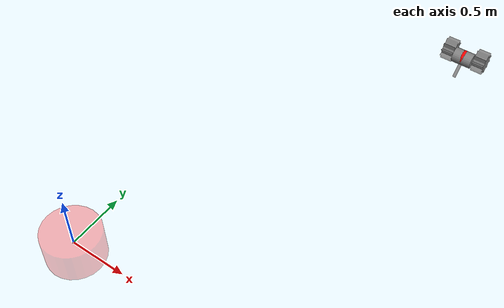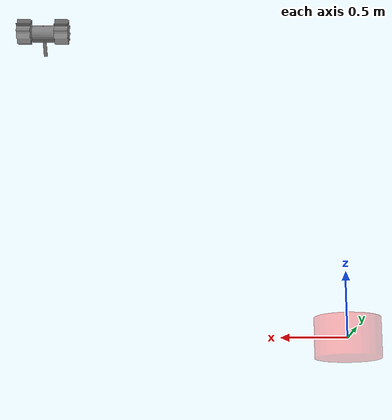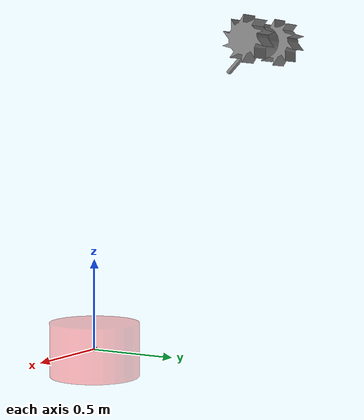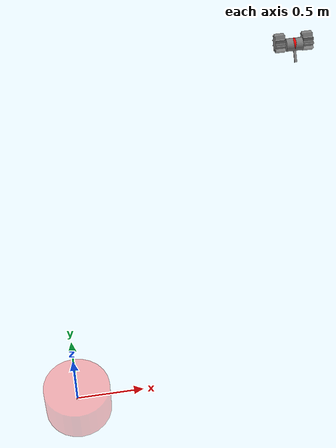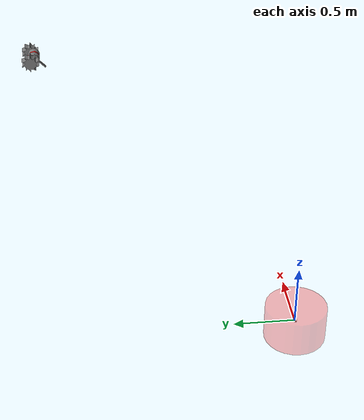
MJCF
<mujoco>

  <visual>
    <!-- 生成される動画の画質を良くする． -->
    <global offwidth="1024" offheight="1024"/>
    <!-- メッシュの分割数調整．影をどれくらいつけるのか -->
    <quality numslices="36" shadowsize="0" />

  </visual>

  <asset>
    <!-- 地面 -->
    <texture name="gray_field" type="2d" builtin="flat" rgb1=".5 .5 .5" width="100" height="100"/>
    <material name="field_material" texture="gray_field" reflectance=".2"/>
    <!--標高データ size="横（フィールドの半分の大きさ）　縦　倍率　マージンの高さ"-->

    <texture name="world_texture" type="skybox" builtin="gradient" rgb1="0 0.5 0.9" rgb2="1 1 1" width="100"/>

    <!-- ロボット -->

    <!-- check -->
    <mesh name="wheel" scale=".001 .001 .001" inertia="exact"  refquat="1 0 0 0"  file="mesh\one_way_grouser.stl" />

  </asset>

  <worldbody>
    <!-- Wrold全体を照らすライトと床 -->
    <light name="main_light" pos="0 0 3" directional="true" diffuse="1.5 1.5 1.5" specular="0.1 0.1 0.1"/>

    <!-- filed -->

    <!-- 目標位置の目印 -->

    <!-- target -->
    <body name="target_body" pos="0 0 0" gravcomp="1">
      <!-- XY平面スライド用に2つの slide joint を追加 -->
      <joint name="slide_x" type="slide" axis="1 0 0"/>
      <joint name="slide_y" type="slide" axis="0 1 0"/>
      <joint name="slide_z" type="slide" axis="0 0 1"/>
      <!-- 衝突無視 -->
      <geom name="target_box" type="box" size="0.01 0.01 0.01" contype="0" conaffinity="0"/>
      <!-- 表示用 site -->
      <site name="target" type="cylinder" pos="0 0 0" size="0.25 0.15" rgba="1 0 0 0.3"/>
    </body>

      <!-- XY平面スライド用に2つの slide joint を追加 -->
      <!-- 衝突無視 -->
      <!-- 表示用 site -->

    <camera name="main_cam" pos="2 -0.7 2.2" euler="42 0 0"/>

    <body name="2wheel_rover" pos="2 2 1.5">
      <joint name="body_free_joint" type="free" damping="1" />

      <!-- body -->
      <body name = "main_body">
        <geom name="main_body_geom" group="2" type="cylinder" fromto=".065 0 0 -.065 0 0" size=".05" mass="0.5" />
      </body>

      <site name="marker" pos="0 -0.0005 0.001" size="0.05" type="sphere" rgba="1 0 0 1"/>
      <site name="IMU" pos="0 0 0" size="0.01" rgba="1 0 1 1"/>
      <site name="GYRO" pos="0 0 0" size="0.01" rgba="0 1 1 1"/>
      <site name="VELOCITY" pos="0 0 0" size="0.01" rgba="0 1 1 1"/>

     <!-- wheel -->
      <body name="r_wheel" pos="0.07 0 0">
        <joint name="r_wheel_joint" type="hinge" axis="-1 0 0" damping="0.3" frictionloss="0.01" />
        <!-- frictionは滑り，ねじり，転がり　の順 -->
        <geom name="r_wheel_geom" group="2" type="mesh" mesh="wheel" mass="0.25" pos="0 0.03 0" friction="1 0.1 0.1" />
      </body>
      <body name="l_wheel" pos="-0.15 0 0">
        <joint name="l_wheel_joint" type="hinge" axis="-1 0 0" damping="0.3" frictionloss="0.01"/>
        <geom name="l_wheel_geom" group="2" type="mesh" mesh="wheel" mass="0.25"  pos="0 0.03 0" friction="1 0.1 0.1"/>
      </body>

      <!-- stabilzer -->
      <geom name="stabilizer" group="2" type="box" size="0.01 0.07 0.005" pos="0 -0.049497 -0.049497" euler="45 0 0" mass="0.2" />

    </body>

    <!-- 貫通しない用の平面 -->
    <geom name="floor" group="1" type="plane" pos="5 5 0" size="5 5 .001" material="field_material"  rgba="0 0 0 0" />

  </worldbody>

  <actuator>
    <!-- swingがトルクをかける対象，gearはモータが関節に与えるスケーリング係数トルク = モーター出力 * gear） -->
    <!-- 入力に対して何倍してトルクを出すかということ -->
    <intvelocity name="r_motor" joint="r_wheel_joint" gear="1" kp="1" actrange="-inf inf" ctrllimited="true" ctrlrange="-5.2359877 5.2359877" forcelimited="true" forcerange="-2.94 2.94" />
    <intvelocity name="l_motor" joint="l_wheel_joint" gear="1" kp="1" actrange="-inf inf" ctrllimited="true" ctrlrange="-5.2359877 5.2359877" forcelimited="true" forcerange="-2.94 2.94" />
  </actuator>

  <sensor>
    <accelerometer name="accelerometer" site="IMU"/>
    <gyro name="gyro" site="GYRO"/>
    <velocimeter name="velocimeter" site="VELOCITY"/>
  </sensor>

</mujoco>
